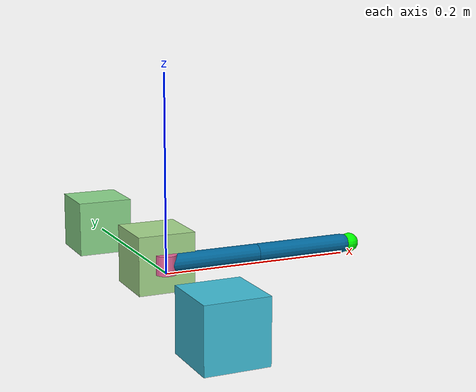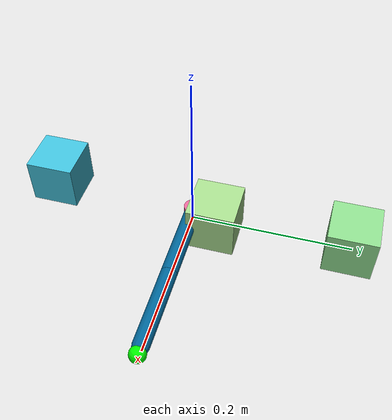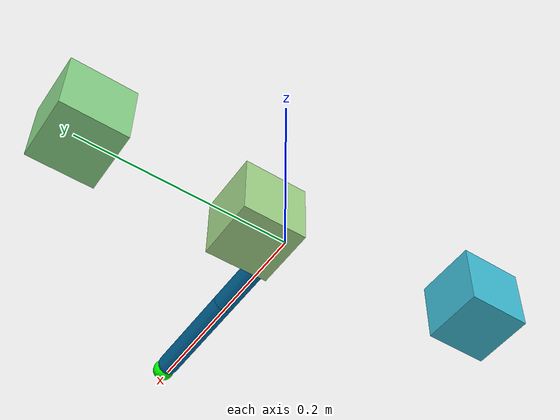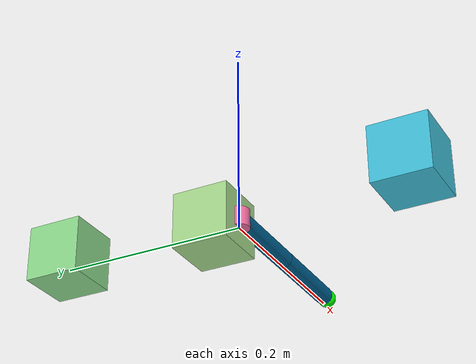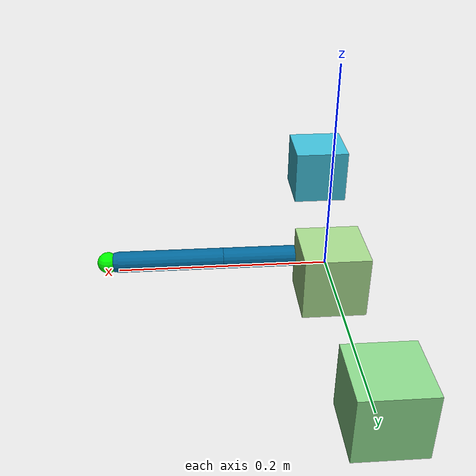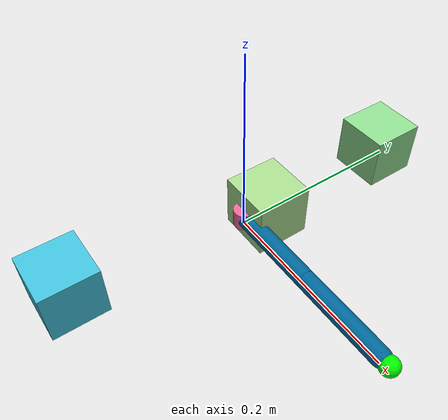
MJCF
<mujoco model="reacher">
	<compiler inertiafromgeom="true" angle="radian"/>
	<default >
		<joint armature="1" damping="1" limited="true"/>
		<geom contype="0" friction="1 0.1 0.1" rgba="0.7 0.7 0 1"/>
	</default>
	<option integrator="RK4" gravity="0 0 -9.81" timestep="0.01"/>
	<worldbody >
		<geom conaffinity="0" name="root" contype="0" fromto="0 0 0 0 0 0.02" rgba="0.9 0.4 0.6 1" type="cylinder" size=".011"/>
		<body name="body0" pos="0 0 .01">
			<geom name="link0" type="capsule" fromto="0 0 0 0.1 0 0" rgba="0.0 0.4 0.6 1.0" size=".01"/>
			<joint limited="true" name="joint0" pos="0 0 0" range="-3.14 3.14" type="hinge" axis="0 0 1"/>
			<body name="body1" pos="0.1 0 0">
				<joint limited="true" name="joint1" pos="0 0 0" range="-3.0 3.0" type="hinge" axis="0 0 1"/>
				<geom name="link1" type="capsule" fromto="0 0 0 0.1 0 0" rgba="0.0 0.4 0.6 1.0" size=".01"/>
				<body name="fingertip" pos="0.11 0 0">
					<geom name="fingertip" pos="0 0 0" contype="0" rgba="0 1 0 1" type="sphere" size=".01"/>
				</body>
			</body>
		</body>
		<body name="target" pos="0.00111938773998 0.0292326181954 0.01">
			<geom conaffinity="0" density="0.00001" contype="0" rgba="0.65 0.85 0.55 1.0" type="box" size="0.03 0.03 0.03"/>
		</body>
		<body name="cube_0" pos="-0.00656813018129 0.197725849338 0.01">
			<geom conaffinity="0" density="0.00001" contype="0" rgba="0.55 0.85 0.55 1.0" type="box" size="0.03 0.03 0.03"/>
		</body>
		<body name="cube_1" pos="-0.0253572700808 -0.189749415034 0.01">
			<geom conaffinity="0" density="0.00001" contype="0" rgba="0.25 0.75 0.85 1.0" type="box" size="0.03 0.03 0.03"/>
		</body>
	</worldbody>
	<actuator >
		<motor ctrllimited="true" joint="joint0" ctrlrange="-1.0 1.0" gear="200.0"/>
		<motor ctrllimited="true" joint="joint1" ctrlrange="-1.0 1.0" gear="200.0"/>
	</actuator>
</mujoco>
